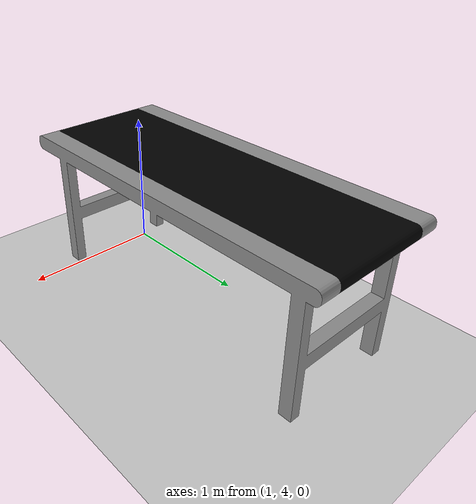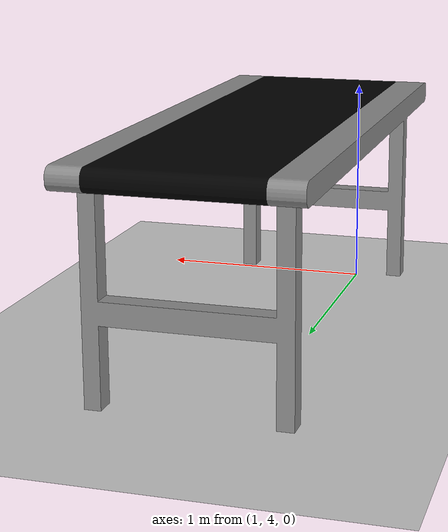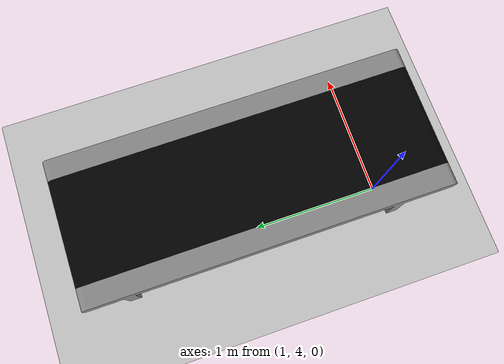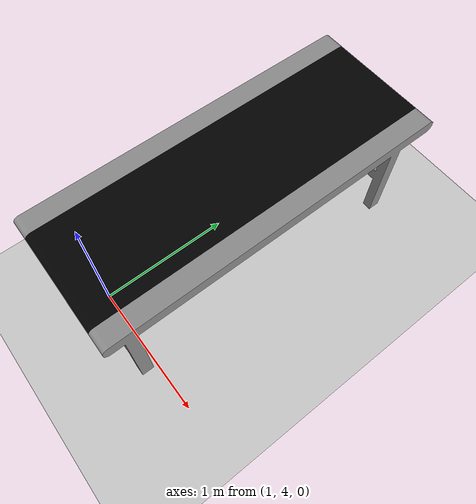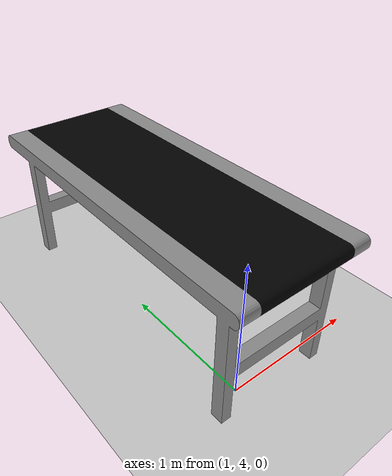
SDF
<?xml version="1.0" ?>
<sdf version="1.5">
  <world name="gilbreth_world">
    <!-- Set the initial camera pose to be looking at the workspace. -->
    <gui>
      <camera name="user_camera">
        <pose>-4.33 1.88 6.11 0 0.9 -0.27</pose>
      </camera>
    </gui>

    <physics type="ode">
      <max_step_size>0.00625</max_step_size>
      <real_time_factor>1</real_time_factor>
      <real_time_update_rate>160</real_time_update_rate>
      <gravity>0 0 -9.8</gravity>
    </physics>

    <!-- Disable shadows. -->
    <scene>
      <shadows>false</shadows>
    </scene>

    <!-- A small chunk of the pale blue dot. -->
    <include>
      <uri>model://ground_plane</uri>
    </include>

    <!-- A global light source -->
    <include>
      <uri>model://sun</uri>
    </include>

    <!-- A directed light source -->
    <light name="camera_spot_light" type='spot'>
      <pose>-10 10 10 0 -1 -0.8</pose>
      <diffuse>0.5 0.5 0.5 1</diffuse>
      <specular>0.1 0.1 0.1 1</specular>
      <direction>0 0 -1</direction>
      <attenuation>
        <range>20</range>
        <constant>0.5</constant>
        <linear>0.01</linear>
        <quadratic>0.001</quadratic>
      </attenuation>
      <cast_shadows>0</cast_shadows>
      <spot>
        <inner_angle>0.6</inner_angle>
        <outer_angle>1</outer_angle>
        <falloff>1</falloff>
      </spot>
    </light>

    <include>
      <uri>model://conveyor</uri>
      <pose>1.2 5 0 0 0 -1.571</pose>
    </include>

    <include>
      <uri>model://deletion_wall</uri>
      <pose>1.2 -5.1 1.425 0 0 1.5708</pose>
    </include>

  </world>
</sdf>

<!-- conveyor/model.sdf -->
<sdf version='1.6'>
  <model name='conveyor'>
    <link name='link'>
      <self_collide>0</self_collide>
      <enable_wind>0</enable_wind>
      <kinematic>0</kinematic>
      <pose frame=''>0 0 0 0 -0 0</pose>
      <gravity>1</gravity>
      <inertial>
        <mass>1</mass>
        <pose frame=''>0 0 0 0 -0 0</pose>
        <inertia>
          <ixx>1</ixx>
          <ixy>0</ixy>
          <ixz>0</ixz>
          <iyy>1</iyy>
          <iyz>0</iyz>
          <izz>1</izz>
        </inertia>
      </inertial>
      <visual name='visual'>
        <pose frame=''>0 0 0.95 0 -0 0</pose>
        <geometry>
          <mesh>
            <scale>0.5 0.5 0.5</scale>
            <uri>model://conveyor/meshes/conveyor2.dae</uri>
          </mesh>
        </geometry>
      </visual>
      <collision name='collision_0'>
        <laser_retro>0</laser_retro>
        <max_contacts>10</max_contacts>
        <pose frame=''>0 0 0.95 0 -0 0</pose>
        <geometry>
          <box>
            <size>2.5 1 0.1</size>
          </box>
        </geometry>
        <surface>
          <friction>
            <ode>
              <mu>1</mu>
              <mu2>1</mu2>
              <fdir1>0 0 0</fdir1>
              <slip1>0</slip1>
              <slip2>0</slip2>
            </ode>
            <torsional>
              <coefficient>1</coefficient>
              <patch_radius>0</patch_radius>
              <surface_radius>0</surface_radius>
              <use_patch_radius>1</use_patch_radius>
              <ode>
                <slip>0</slip>
              </ode>
            </torsional>
          </friction>
          <bounce>
            <restitution_coefficient>0</restitution_coefficient>
            <threshold>1e+06</threshold>
          </bounce>
          <contact>
            <collide_without_contact>0</collide_without_contact>
            <collide_without_contact_bitmask>1</collide_without_contact_bitmask>
            <collide_bitmask>1</collide_bitmask>
            <ode>
              <soft_cfm>0</soft_cfm>
              <soft_erp>0.2</soft_erp>
              <kp>1e+13</kp>
              <kd>1</kd>
              <max_vel>0.01</max_vel>
              <min_depth>0</min_depth>
            </ode>
            <bullet>
              <split_impulse>1</split_impulse>
              <split_impulse_penetration_threshold>-0.01</split_impulse_penetration_threshold>
              <soft_cfm>0</soft_cfm>
              <soft_erp>0.2</soft_erp>
              <kp>1e+13</kp>
              <kd>1</kd>
            </bullet>
          </contact>
        </surface>
      </collision>
    </link>
    <static>1</static>
    <allow_auto_disable>1</allow_auto_disable>
  </model>
</sdf>

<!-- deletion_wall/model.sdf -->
<sdf version="1.6">
  <model name="deletion_wall">

    <static>true</static>
    <link name="sensing_link">
      <gravity>false</gravity>
      <sensor name="object_disposal_contact" type="contact">
        <update_rate>10</update_rate>
        <contact>
           <collision>collision</collision>
        </contact>
      </sensor>
      <collision name="collision">
        <max_contacts>10</max_contacts>
        <geometry>
          <box>
            <size>0.1 1 1</size>
          </box>
        </geometry>
      </collision>
      <visual name="visual">
        <geometry>
          <box>
            <size>0.1 1 1</size>
          </box>
        </geometry>
        <cast_shadows>0</cast_shadows>

        <transparency>100</transparency>
      </visual>
    </link>

    <plugin name="object_disposal_plugin" filename="libObjectDisposalPlugin.so">
      <contact_sensor_name>object_disposal_contact</contact_sensor_name>
      <contact_side_normal>1 0 0</contact_side_normal>
      <disposal_pose>30 30 0 0 0 0</disposal_pose>
      <update_rate>5</update_rate>
    </plugin>

  </model>
</sdf>
